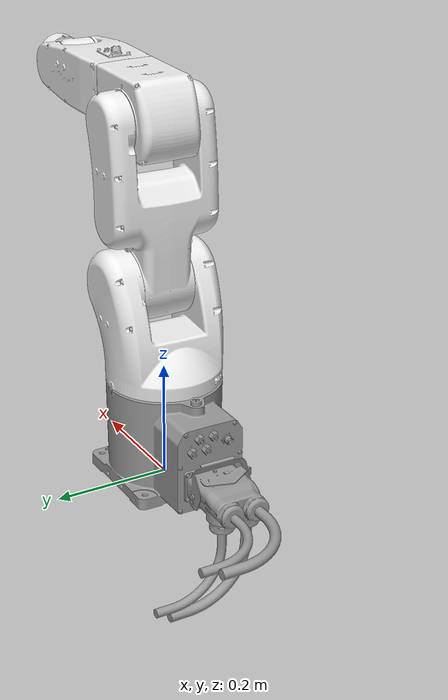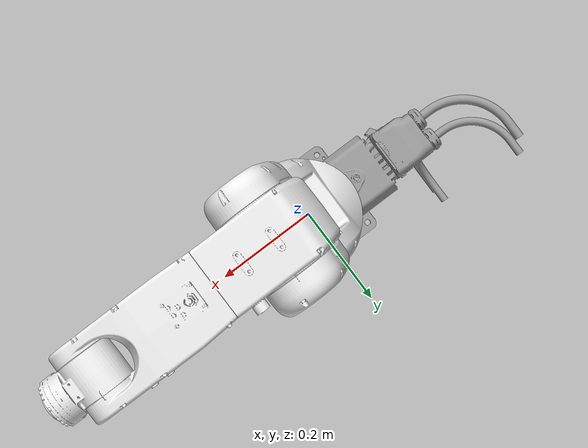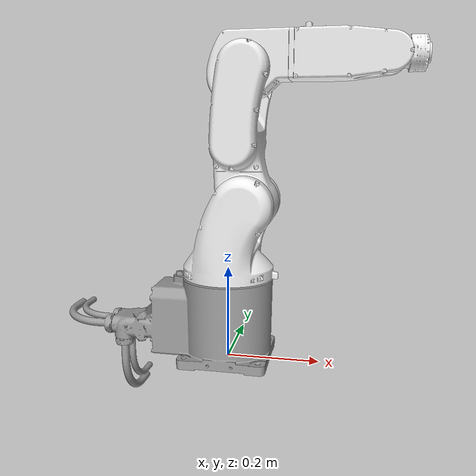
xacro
<?xml version="1.0"?>
<!-- xMateEB4 industrial standard 6-axis manipulator (4 kg payload) -->
<!-- Kinematics from 仓二 EB4-R596-37 *_mech.cfg + isg/EB4-R596/param.json -->
<!-- Attention: simplified link inertias for visualization / MoveIt -->

<robot name="xMateEB4" xmlns:xacro="http://www.ros.org/wiki/xacro">

  <xacro:arg name="robot_ip" default="192.168.21.10"/>
  <xacro:arg name="local_ip" default="192.168.21.131"/>

  <xacro:include filename="$(find rokae_description)/urdf/materials.xacro"/>
  <xacro:property name="nameofManipulator" value="xMateEB4"/>

  <!-- Joint limits: JOINT_RANGE_*_CUSTOMIZE from EB4-R596-37_mech.cfg (deg -> rad) -->
  <xacro:property name="j1_lo" value="-2.9670597283903604"/>
  <xacro:property name="j1_hi" value="2.9670597283903604"/>
  <xacro:property name="j2_lo" value="-1.3962634015954636"/>
  <xacro:property name="j2_hi" value="2.5132741228718345"/>
  <xacro:property name="j3_lo" value="-3.3859385131987587"/>
  <xacro:property name="j3_hi" value="0.9424777960769377"/>
  <xacro:property name="j4_lo" value="-2.9670597283903604"/>
  <xacro:property name="j4_hi" value="2.9670597283903604"/>
  <xacro:property name="j5_lo" value="-2.076941553646873"/>
  <xacro:property name="j5_hi" value="2.076941553646873"/>
  <xacro:property name="j6_lo" value="-6.283185307179586"/>
  <xacro:property name="j6_hi" value="6.283185307179586"/>

  <!-- JOINT_MAX_SPEED from EB4-R596-37_mech.cfg MOTION (deg/s -> rad/s) -->
  <xacro:property name="j1_vel" value="6.457718232379019"/>
  <xacro:property name="j2_vel" value="5.183627878423159"/>
  <xacro:property name="j3_vel" value="6.457718232379019"/>
  <xacro:property name="j4_vel" value="9.337511498169663"/>
  <xacro:property name="j5_vel" value="8.499753457212384"/>
  <xacro:property name="j6_vel" value="13.613568165555769"/>

  <link name="world"/>
  <joint name="fixed" type="fixed">
    <parent link="world"/>
    <child link="${nameofManipulator}_base"/>
  </joint>

  <link name="${nameofManipulator}_base">
    <visual>
      <geometry>
        <mesh filename="package://rokae_description/meshes/${nameofManipulator}/visual/${nameofManipulator}_base.stl" scale="0.001 0.001 0.001"/>
      </geometry>
      <origin rpy="0 0 0" xyz="0 0 0"/>
      <material name="grey"/>
    </visual>
    <inertial>
      <mass value="6.607"/>
      <inertia ixx="0.05" ixy="0" ixz="0" iyy="0.05" iyz="0" izz="0.05"/>
      <origin rpy="0 0 0" xyz="0 0 0.17"/>
    </inertial>
    <collision>
      <geometry>
        <mesh filename="package://rokae_description/meshes/${nameofManipulator}/collision/${nameofManipulator}_base.stl" scale="0.001 0.001 0.001"/>
      </geometry>
      <origin rpy="0 0 0" xyz="0 0 0"/>
    </collision>
  </link>

  <!-- param.json: joint1 at base origin, axis Z -->
  <joint name="joint1" type="revolute">
    <parent link="${nameofManipulator}_base"/>
    <child link="${nameofManipulator}_link1"/>
    <limit effort="4.46" lower="${j1_lo}" upper="${j1_hi}" velocity="${j1_vel}"/>
    <axis xyz="0 0 1"/>
    <origin rpy="0 0 0" xyz="0 0 0"/>
  </joint>

  <link name="${nameofManipulator}_link1">
    <visual>
      <geometry>
        <mesh filename="package://rokae_description/meshes/${nameofManipulator}/visual/${nameofManipulator}_link1.stl" scale="0.001 0.001 0.001"/>
      </geometry>
      <origin rpy="0 0 0" xyz="0 0 0"/>
      <material name="white"/>
    </visual>
    <inertial>
      <mass value="6.607"/>
      <inertia ixx="0.05" ixy="0" ixz="0" iyy="0.05" iyz="0" izz="0.05"/>
      <origin rpy="0 0 0" xyz="0.013 0.019 0.263"/>
    </inertial>
    <collision>
      <geometry>
        <mesh filename="package://rokae_description/meshes/${nameofManipulator}/collision/${nameofManipulator}_link1.stl" scale="0.001 0.001 0.001"/>
      </geometry>
      <origin rpy="0 0 0" xyz="0 0 0"/>
    </collision>
  </link>

  <!-- param.json: joint2 [40, 0, 342] mm, axis Y -->
  <joint name="joint2" type="revolute">
    <parent link="${nameofManipulator}_link1"/>
    <child link="${nameofManipulator}_link2"/>
    <limit effort="4.46" lower="${j2_lo}" upper="${j2_hi}" velocity="${j2_vel}"/>
    <axis xyz="0 1 0"/>
    <origin rpy="0 0 0" xyz="0.04 0 0.342"/>
  </joint>

  <link name="${nameofManipulator}_link2">
    <visual>
      <geometry>
        <mesh filename="package://rokae_description/meshes/${nameofManipulator}/visual/${nameofManipulator}_link2.stl" scale="0.001 0.001 0.001"/>
      </geometry>
      <origin rpy="0 0 0" xyz="0 0 0"/>
      <material name="white"/>
    </visual>
    <inertial>
      <mass value="6.386"/>
      <inertia ixx="0.05" ixy="0" ixz="0" iyy="0.05" iyz="0" izz="0.05"/>
      <origin rpy="0 0 0" xyz="-0.008 0.019 0.123"/>
    </inertial>
    <collision>
      <geometry>
        <mesh filename="package://rokae_description/meshes/${nameofManipulator}/collision/${nameofManipulator}_link2.stl" scale="0.001 0.001 0.001"/>
      </geometry>
      <origin rpy="0 0 0" xyz="0 0 0"/>
    </collision>
  </link>

  <!-- param.json: joint3 [0, 0, 275] mm, axis Y -->
  <joint name="joint3" type="revolute">
    <parent link="${nameofManipulator}_link2"/>
    <child link="${nameofManipulator}_link3"/>
    <limit effort="2.23" lower="${j3_lo}" upper="${j3_hi}" velocity="${j3_vel}"/>
    <axis xyz="0 1 0"/>
    <origin rpy="0 0 0" xyz="0 0 0.275"/>
  </joint>

  <link name="${nameofManipulator}_link3">
    <visual>
      <geometry>
        <mesh filename="package://rokae_description/meshes/${nameofManipulator}/visual/${nameofManipulator}_link3.stl" scale="0.001 0.001 0.001"/>
      </geometry>
      <origin rpy="0 0 0" xyz="0 0 0"/>
      <material name="white"/>
    </visual>
    <inertial>
      <mass value="3.805"/>
      <inertia ixx="0.03" ixy="0" ixz="0" iyy="0.03" iyz="0" izz="0.03"/>
      <origin rpy="0 0 0" xyz="0.022 -0.001 0.009"/>
    </inertial>
    <collision>
      <geometry>
        <mesh filename="package://rokae_description/meshes/${nameofManipulator}/collision/${nameofManipulator}_link3.stl" scale="0.001 0.001 0.001"/>
      </geometry>
      <origin rpy="0 0 0" xyz="0 0 0"/>
    </collision>
  </link>

  <!-- param.json: joint4 [280, 0, 25] mm, axis X -->
  <joint name="joint4" type="revolute">
    <parent link="${nameofManipulator}_link3"/>
    <child link="${nameofManipulator}_link4"/>
    <limit effort="1.11" lower="${j4_lo}" upper="${j4_hi}" velocity="${j4_vel}"/>
    <axis xyz="1 0 0"/>
    <origin rpy="0 0 0" xyz="0.28 0 0.025"/>
  </joint>

  <link name="${nameofManipulator}_link4">
    <visual>
      <geometry>
        <mesh filename="package://rokae_description/meshes/${nameofManipulator}/visual/${nameofManipulator}_link4.stl" scale="0.001 0.001 0.001"/>
      </geometry>
      <origin rpy="0 0 0" xyz="0 0 0"/>
      <material name="white"/>
    </visual>
    <inertial>
      <mass value="2.949"/>
      <inertia ixx="0.02" ixy="0" ixz="0" iyy="0.02" iyz="0" izz="0.02"/>
      <origin rpy="0 0 0" xyz="-0.109 -0.001 0"/>
    </inertial>
    <collision>
      <geometry>
        <mesh filename="package://rokae_description/meshes/${nameofManipulator}/collision/${nameofManipulator}_link4.stl" scale="0.001 0.001 0.001"/>
      </geometry>
      <origin rpy="0 0 0" xyz="0 0 0"/>
    </collision>
  </link>

  <!-- param.json: joint5 at origin, axis Y -->
  <joint name="joint5" type="revolute">
    <parent link="${nameofManipulator}_link4"/>
    <child link="${nameofManipulator}_link5"/>
    <limit effort="0.56" lower="${j5_lo}" upper="${j5_hi}" velocity="${j5_vel}"/>
    <axis xyz="0 1 0"/>
    <origin rpy="0 0 0" xyz="0 0 0"/>
  </joint>

  <link name="${nameofManipulator}_link5">
    <visual>
      <geometry>
        <mesh filename="package://rokae_description/meshes/${nameofManipulator}/visual/${nameofManipulator}_link5.stl" scale="0.001 0.001 0.001"/>
      </geometry>
      <origin rpy="0 0 0" xyz="0 0 0"/>
      <material name="white"/>
    </visual>
    <inertial>
      <mass value="1.289"/>
      <inertia ixx="0.01" ixy="0" ixz="0" iyy="0.01" iyz="0" izz="0.01"/>
      <origin rpy="0 0 0" xyz="0.017 0.001 0"/>
    </inertial>
    <collision>
      <geometry>
        <mesh filename="package://rokae_description/meshes/${nameofManipulator}/collision/${nameofManipulator}_link5.stl" scale="0.001 0.001 0.001"/>
      </geometry>
      <origin rpy="0 0 0" xyz="0 0 0"/>
    </collision>
  </link>

  <!-- param.json: joint6 [73, 0, 0] mm, axis X -->
  <joint name="joint6" type="revolute">
    <parent link="${nameofManipulator}_link5"/>
    <child link="${nameofManipulator}_link6"/>
    <limit effort="1.11" lower="${j6_lo}" upper="${j6_hi}" velocity="${j6_vel}"/>
    <axis xyz="1 0 0"/>
    <origin rpy="0 0 0" xyz="0.073 0 0"/>
  </joint>

  <link name="${nameofManipulator}_link6">
    <visual>
      <geometry>
        <mesh filename="package://rokae_description/meshes/${nameofManipulator}/visual/${nameofManipulator}_link6.stl" scale="0.001 0.001 0.001"/>
      </geometry>
      <origin rpy="0 0 0" xyz="0 0 0"/>
      <material name="white"/>
    </visual>
    <inertial>
      <mass value="0.210"/>
      <inertia ixx="0.002" ixy="0" ixz="0" iyy="0.002" iyz="0" izz="0.002"/>
      <origin rpy="0 0 0" xyz="-0.011 0 0"/>
    </inertial>
    <collision>
      <geometry>
        <mesh filename="package://rokae_description/meshes/${nameofManipulator}/collision/${nameofManipulator}_link6.stl" scale="0.001 0.001 0.001"/>
      </geometry>
      <origin rpy="0 0 0" xyz="0 0 0"/>
    </collision>
  </link>

</robot>
